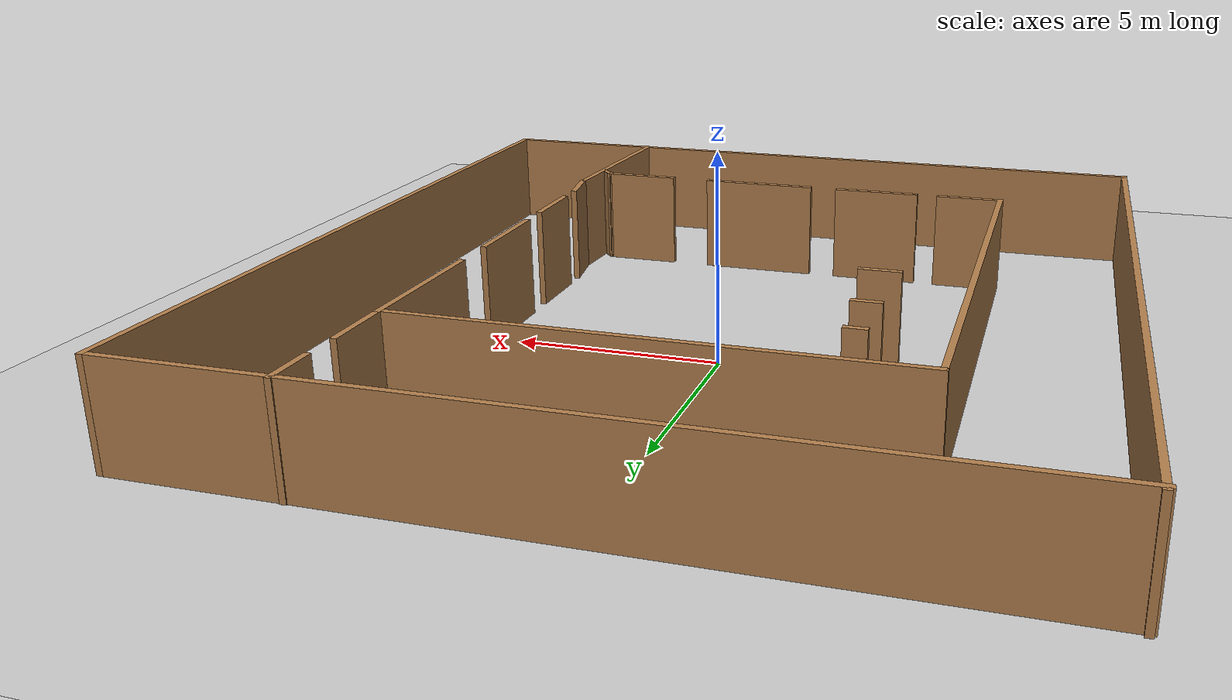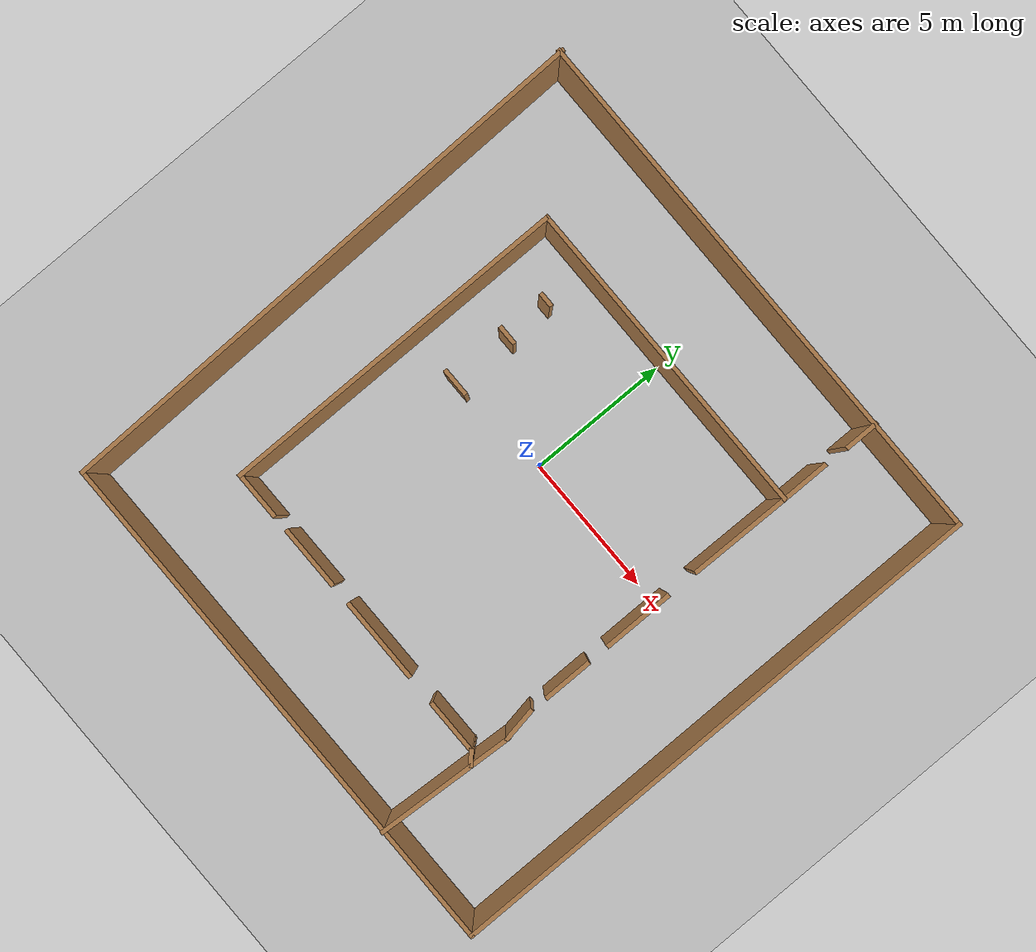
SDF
<sdf version="1.6">
 <world name="default">
  <plugin name="gazebo_ros_state" filename="libgazebo_ros_state.so"/>
  <light name="sun" type="directional">
   <pose>0 0 10 0 -0 0</pose>
   <diffuse>0.8 0.8 0.8 1</diffuse>
   <specular>0.2 0.2 0.2 1</specular>
   <attenuation>
    <range>1000</range>
    <constant>0.9</constant>
    <linear>0.01</linear>
    <quadratic>0.001</quadratic>
   </attenuation>
   <direction>-0.5 0.1 -0.9</direction>
  </light>
  <model name="ground_plane">
   <static>1</static>
   <link name="link">
    <collision name="collision">
     <geometry><plane><normal>0 0 1</normal><size>100 100</size></plane></geometry>
     <surface>
      <contact><collide_bitmask>65535</collide_bitmask></contact>
      <friction><ode><mu>100</mu><mu2>50</mu2></ode></friction>
     </surface>
    </collision>
    <visual name="visual">
     <cast_shadows>0</cast_shadows>
     <geometry><plane><normal>0 0 1</normal><size>100 100</size></plane></geometry>
     <material>
      <script><uri>file://media/materials/scripts/gazebo.material</uri><name>Gazebo/Grey</name></script>
     </material>
    </visual>
   </link>
  </model>
  <gravity>0 0 -9.8</gravity>
  <magnetic_field>6e-06 2.3e-05 -4.2e-05</magnetic_field>
  <atmosphere type="adiabatic"/>
  <physics name="default_physics" default="0" type="ode">
   <max_step_size>0.002</max_step_size>
   <real_time_factor>1</real_time_factor>
   <real_time_update_rate>1000</real_time_update_rate>
  </physics>
  <scene><ambient>0.4 0.4 0.4 1</ambient><background>0.7 0.7 0.7 1</background><shadows>1</shadows></scene>
  <spherical_coordinates>
   <surface_model>EARTH_WGS84</surface_model>
   <latitude_deg>0</latitude_deg>
   <longitude_deg>0</longitude_deg>
   <elevation>0</elevation>
   <heading_deg>0</heading_deg>
  </spherical_coordinates>
  <model name="kondziu">
   <pose>0.154813 -1.10649 0 0 -0 0</pose>
   <link name="Wall_30">
    <collision name="Wall_30_Collision">
     <geometry><box><size>4.93371 0.15 2.5</size></box></geometry>
     <pose>0 0 1.25 0 -0 0</pose>
    </collision>
    <visual name="Wall_30_Visual">
     <pose>0 0 1.25 0 -0 0</pose>
     <geometry><box><size>4.93371 0.15 2.5</size></box></geometry>
     <material>
      <script><uri>file://media/materials/scripts/gazebo.material</uri><name>Gazebo/Wood</name></script>
      <ambient>1 1 1 1</ambient>
     </material>
     <meta><layer>0</layer></meta>
    </visual>
    <pose>5.49896 -7.46627 0 0 -0 -1.62981</pose>
   </link>
   <link name="Wall_32">
    <collision name="Wall_32_Collision">
     <geometry><box><size>3.69049 0.15 2.5</size></box></geometry>
     <pose>0 0 1.25 0 -0 0</pose>
    </collision>
    <visual name="Wall_32_Visual">
     <pose>0 0 1.25 0 -0 0</pose>
     <geometry><box><size>3.69049 0.15 2.5</size></box></geometry>
     <material>
      <script><uri>file://media/materials/scripts/gazebo.material</uri><name>Gazebo/Wood</name></script>
      <ambient>1 1 1 1</ambient>
     </material>
     <meta><layer>0</layer></meta>
    </visual>
    <pose>5.47761 4.44447 0 0 -0 -1.58068</pose>
   </link>
   <link name="Wall_34">
    <collision name="Wall_34_Collision">
     <geometry><box><size>2.5 0.15 2.5</size></box></geometry>
     <pose>0 0 1.25 0 -0 0</pose>
    </collision>
    <visual name="Wall_34_Visual">
     <pose>0 0 1.25 0 -0 0</pose>
     <geometry><box><size>2.5 0.15 2.5</size></box></geometry>
     <material>
      <script><uri>file://media/materials/scripts/gazebo.material</uri><name>Gazebo/Wood</name></script>
      <ambient>1 1 1 1</ambient>
     </material>
     <meta><layer>0</layer></meta>
    </visual>
    <pose>5.45512 0.314373 0 0 -0 1.5708</pose>
   </link>
   <link name="Wall_461">
    <collision name="Wall_461_Collision">
     <geometry><box><size>0.523 0.15 2.5</size></box></geometry>
     <pose>0 0 1.25 0 -0 0</pose>
    </collision>
    <visual name="Wall_461_Visual">
     <pose>0 0 1.25 0 -0 0</pose>
     <geometry><box><size>0.523 0.15 2.5</size></box></geometry>
     <material>
      <script><uri>file://media/materials/scripts/gazebo.material</uri><name>Gazebo/Wood</name></script>
      <ambient>1 1 1 1</ambient>
     </material>
     <meta><layer>0</layer></meta>
    </visual>
    <pose>-3.93675 4.51969 0 0 -0 0</pose>
   </link>
   <link name="Wall_463">
    <collision name="Wall_463_Collision">
     <geometry><box><size>0.7 0.15 2.5</size></box></geometry>
     <pose>0 0 1.25 0 -0 0</pose>
    </collision>
    <visual name="Wall_463_Visual">
     <pose>0 0 1.25 0 -0 0</pose>
     <geometry><box><size>0.7 0.15 2.5</size></box></geometry>
     <material>
      <script><uri>file://media/materials/scripts/gazebo.material</uri><name>Gazebo/Wood</name></script>
      <ambient>1 1 1 1</ambient>
     </material>
     <meta><layer>0</layer></meta>
    </visual>
    <pose>-3.86937 2.90008 0 0 -0 3.14159</pose>
   </link>
   <link name="Wall_465">
    <collision name="Wall_465_Collision">
     <geometry><box><size>1 0.15 2.5</size></box></geometry>
     <pose>0 0 1.25 0 -0 0</pose>
    </collision>
    <visual name="Wall_465_Visual">
     <pose>0 0 1.25 0 -0 0</pose>
     <geometry><box><size>1 0.15 2.5</size></box></geometry>
     <material>
      <script><uri>file://media/materials/scripts/gazebo.material</uri><name>Gazebo/Wood</name></script>
      <ambient>1 1 1 1</ambient>
     </material>
     <meta><layer>0</layer></meta>
    </visual>
    <pose>-3.78953 0.741713 0 0 -0 3.14159</pose>
   </link>
   <link name="Wall_469">
    <collision name="Wall_469_Collision">
     <geometry><box><size>1.24885 0.15 2.5</size></box></geometry>
     <pose>0 0 1.25 0 -0 0</pose>
    </collision>
    <visual name="Wall_469_Visual">
     <pose>0 0 1.25 0 -0 0</pose>
     <geometry><box><size>1.24885 0.15 2.5</size></box></geometry>
     <material>
      <script><uri>file://media/materials/scripts/gazebo.material</uri><name>Gazebo/Wood</name></script>
      <ambient>1 1 1 1</ambient>
     </material>
     <meta><layer>0</layer></meta>
    </visual>
    <pose>5.54083 -4.54523 0 0 -0 -1.40506</pose>
   </link>
   <link name="Wall_471">
    <collision name="Wall_471_Collision">
     <geometry><box><size>11.5 0.15 2.5</size></box></geometry>
     <pose>0 0 1.25 0 -0 0</pose>
    </collision>
    <visual name="Wall_471_Visual">
     <pose>0 0 1.25 0 -0 0</pose>
     <geometry><box><size>11.5 0.15 2.5</size></box></geometry>
     <material>
      <script><uri>file://media/materials/scripts/gazebo.material</uri><name>Gazebo/Wood</name></script>
      <ambient>1 1 1 1</ambient>
     </material>
     <meta><layer>0</layer></meta>
    </visual>
    <pose>-0.179904 6.17965 0 0 -0 3.14159</pose>
   </link>
   <link name="Wall_475">
    <collision name="Wall_475_Collision">
     <geometry><box><size>18.75 0.15 2.5</size></box></geometry>
     <pose>0 0 1.25 0 -0 0</pose>
    </collision>
    <visual name="Wall_475_Visual">
     <pose>0 0 1.25 0 -0 0</pose>
     <geometry><box><size>18.75 0.15 2.5</size></box></geometry>
     <material>
      <script><uri>file://media/materials/scripts/gazebo.material</uri><name>Gazebo/Wood</name></script>
      <ambient>1 1 1 1</ambient>
     </material>
     <meta><layer>0</layer></meta>
    </visual>
    <pose>0.25 -9.8173 0 0 -0 0</pose>
   </link>
   <link name="Wall_476">
    <collision name="Wall_476_Collision">
     <geometry><box><size>19.75 0.15 2.5</size></box></geometry>
     <pose>0 0 1.25 0 -0 0</pose>
    </collision>
    <visual name="Wall_476_Visual">
     <pose>0 0 1.25 0 -0 0</pose>
     <geometry><box><size>19.75 0.15 2.5</size></box></geometry>
     <material>
      <script><uri>file://media/materials/scripts/gazebo.material</uri><name>Gazebo/Wood</name></script>
      <ambient>1 1 1 1</ambient>
     </material>
     <meta><layer>0</layer></meta>
    </visual>
    <pose>9.55 -0.017302 0 0 -0 1.5708</pose>
   </link>
   <link name="Wall_477">
    <collision name="Wall_477_Collision">
     <geometry><box><size>19.25 0.15 2.5</size></box></geometry>
     <pose>0 0 1.25 0 -0 0</pose>
    </collision>
    <visual name="Wall_477_Visual">
     <pose>0 0 1.25 0 -0 0</pose>
     <geometry><box><size>19.25 0.15 2.5</size></box></geometry>
     <material>
      <script><uri>file://media/materials/scripts/gazebo.material</uri><name>Gazebo/Wood</name></script>
      <ambient>1 1 1 1</ambient>
     </material>
     <meta><layer>0</layer></meta>
    </visual>
    <pose>-0 9.7827 0 0 -0 3.14159</pose>
   </link>
   <link name="Wall_479">
    <collision name="Wall_479_Collision">
     <geometry><box><size>1.75 0.15 2.5</size></box></geometry>
     <pose>0 0 1.25 0 -0 0</pose>
    </collision>
    <visual name="Wall_479_Visual">
     <pose>0 0 1.25 0 -0 0</pose>
     <geometry><box><size>1.75 0.15 2.5</size></box></geometry>
     <material>
      <script><uri>file://media/materials/scripts/gazebo.material</uri><name>Gazebo/Wood</name></script>
      <ambient>1 1 1 1</ambient>
     </material>
     <meta><layer>0</layer></meta>
    </visual>
    <pose>5.4951 6.97965 0 0 -0 1.5708</pose>
   </link>
   <link name="Wall_481">
    <collision name="Wall_481_Collision">
     <geometry><box><size>1.25 0.15 2.5</size></box></geometry>
     <pose>0 0 1.25 0 -0 0</pose>
    </collision>
    <visual name="Wall_481_Visual">
     <pose>0 0 1.25 0 -0 0</pose>
     <geometry><box><size>1.25 0.15 2.5</size></box></geometry>
     <material>
      <script><uri>file://media/materials/scripts/gazebo.material</uri><name>Gazebo/Wood</name></script>
      <ambient>1 1 1 1</ambient>
     </material>
     <meta><layer>0</layer></meta>
    </visual>
    <pose>5.53159 9.25799 0 0 -0 -1.5708</pose>
   </link>
   <link name="Wall_483">
    <collision name="Wall_483_Collision">
     <geometry><box><size>1.75 0.15 2.5</size></box></geometry>
     <pose>0 0 1.25 0 -0 0</pose>
    </collision>
    <visual name="Wall_483_Visual">
     <pose>0 0 1.25 0 -0 0</pose>
     <geometry><box><size>1.75 0.15 2.5</size></box></geometry>
     <material>
      <script><uri>file://media/materials/scripts/gazebo.material</uri><name>Gazebo/Wood</name></script>
      <ambient>1 1 1 1</ambient>
     </material>
     <meta><layer>0</layer></meta>
    </visual>
    <pose>5.45638 -2.52298 0 0 -0 -1.5708</pose>
   </link>
   <link name="Wall_485">
    <collision name="Wall_485_Collision">
     <geometry><box><size>12.5 0.15 2.5</size></box></geometry>
     <pose>0 0 1.25 0 -0 0</pose>
    </collision>
    <visual name="Wall_485_Visual">
     <pose>0 0 1.25 0 -0 0</pose>
     <geometry><box><size>12.5 0.15 2.5</size></box></geometry>
     <material>
      <script><uri>file://media/materials/scripts/gazebo.material</uri><name>Gazebo/Wood</name></script>
      <ambient>1 1 1 1</ambient>
     </material>
     <meta><layer>0</layer></meta>
    </visual>
    <pose>-5.8549 0.004647 0 0 -0 -1.5708</pose>
   </link>
   <link name="Wall_488">
    <collision name="Wall_488_Collision">
     <geometry><box><size>1.75 0.15 2.5</size></box></geometry>
     <pose>0 0 1.25 0 -0 0</pose>
    </collision>
    <visual name="Wall_488_Visual">
     <pose>0 0 1.25 0 -0 0</pose>
     <geometry><box><size>1.75 0.15 2.5</size></box></geometry>
     <material>
      <script><uri>file://media/materials/scripts/gazebo.material</uri><name>Gazebo/Wood</name></script>
      <ambient>1 1 1 1</ambient>
     </material>
     <meta><layer>0</layer></meta>
    </visual>
    <pose>-5.0549 -6.17035 0 0 -0 0</pose>
   </link>
   <link name="Wall_490">
    <collision name="Wall_490_Collision">
     <geometry><box><size>2.25 0.15 2.5</size></box></geometry>
     <pose>0 0 1.25 0 -0 0</pose>
    </collision>
    <visual name="Wall_490_Visual">
     <pose>0 0 1.25 0 -0 0</pose>
     <geometry><box><size>2.25 0.15 2.5</size></box></geometry>
     <material>
      <script><uri>file://media/materials/scripts/gazebo.material</uri><name>Gazebo/Wood</name></script>
      <ambient>1 1 1 1</ambient>
     </material>
     <meta><layer>0</layer></meta>
    </visual>
    <pose>-2.5342 -6.16392 0 0 -0 0</pose>
   </link>
   <link name="Wall_492">
    <collision name="Wall_492_Collision">
     <geometry><box><size>3 0.15 2.5</size></box></geometry>
     <pose>0 0 1.25 0 -0 0</pose>
    </collision>
    <visual name="Wall_492_Visual">
     <pose>0 0 1.25 0 -0 0</pose>
     <geometry><box><size>3 0.15 2.5</size></box></geometry>
     <material>
      <script><uri>file://media/materials/scripts/gazebo.material</uri><name>Gazebo/Wood</name></script>
      <ambient>1 1 1 1</ambient>
     </material>
     <meta><layer>0</layer></meta>
    </visual>
    <pose>0.783686 -6.1575 0 0 -0 0</pose>
   </link>
   <link name="Wall_494">
    <collision name="Wall_494_Collision">
     <geometry><box><size>2 0.15 2.5</size></box></geometry>
     <pose>0 0 1.25 0 -0 0</pose>
    </collision>
    <visual name="Wall_494_Visual">
     <pose>0 0 1.25 0 -0 0</pose>
     <geometry><box><size>2 0.15 2.5</size></box></geometry>
     <material>
      <script><uri>file://media/materials/scripts/gazebo.material</uri><name>Gazebo/Wood</name></script>
      <ambient>1 1 1 1</ambient>
     </material>
     <meta><layer>0</layer></meta>
    </visual>
    <pose>4.27868 -6.17035 0 0 -0 0</pose>
   </link>
   <link name="Wall_495">
    <collision name="Wall_495_Collision">
     <geometry><box><size>0.592834 0.15 2.5</size></box></geometry>
     <pose>0 0 1.25 0 -0 0</pose>
    </collision>
    <visual name="Wall_495_Visual">
     <pose>0 0 1.25 0 -0 0</pose>
     <geometry><box><size>0.592834 0.15 2.5</size></box></geometry>
     <material>
      <script><uri>file://media/materials/scripts/gazebo.material</uri><name>Gazebo/Wood</name></script>
      <ambient>1 1 1 1</ambient>
     </material>
     <meta><layer>0</layer></meta>
    </visual>
    <pose>5.35867 -6.32191 0 0 -0 -0.753884</pose>
   </link>
   <link name="Wall_5">
    <collision name="Wall_5_Collision">
     <geometry><box><size>19.8291 0.15 2.5</size></box></geometry>
     <pose>0 0 1.25 0 -0 0</pose>
    </collision>
    <visual name="Wall_5_Visual">
     <pose>0 0 1.25 0 -0 0</pose>
     <geometry><box><size>19.8291 0.15 2.5</size></box></geometry>
     <material>
      <script><uri>file://media/materials/scripts/gazebo.material</uri><name>Gazebo/Wood</name></script>
      <ambient>1 1 1 1</ambient>
     </material>
     <meta><layer>0</layer></meta>
    </visual>
    <pose>-9.27767 0.019618 0 0 -0 1.59394</pose>
   </link>
   <static>1</static>
  </model>
 </world>
</sdf>
